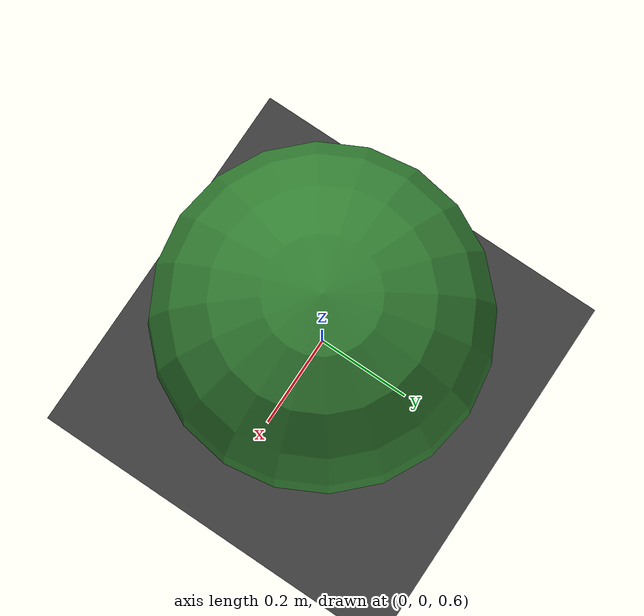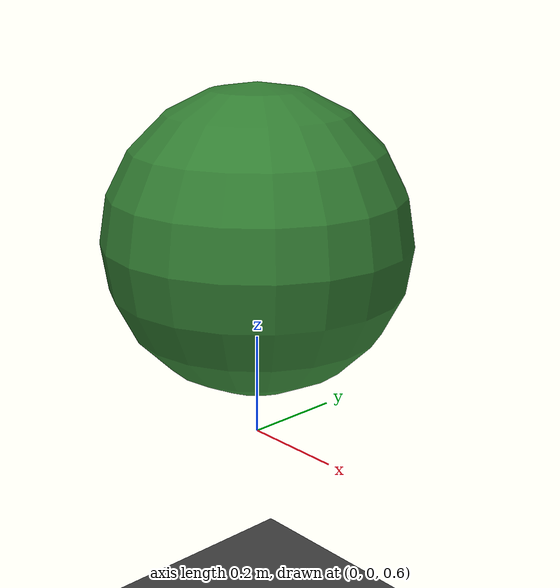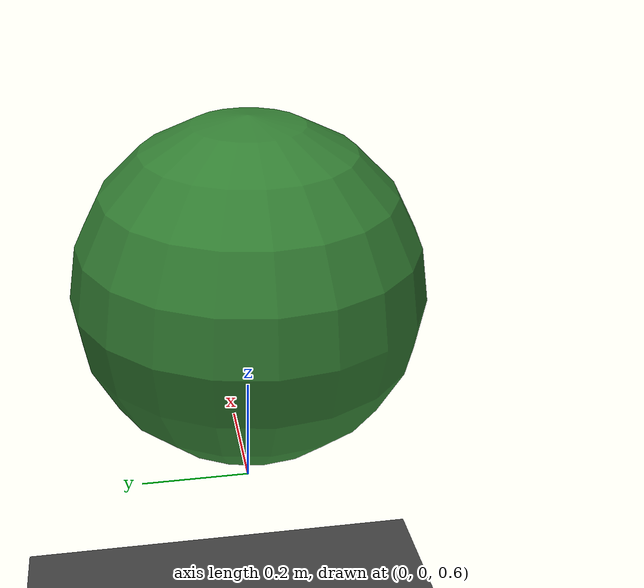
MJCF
don<mujoco>
  <default>
    <geom mass=".01" solref="-1000 0"/>
  </default>
  <visual>
    <rgba haze="0 0 0 1"/>
    <global azimuth="120" elevation="-20"/>
  </visual>
  <asset>
    <texture type="skybox" builtin="gradient" rgb1="0 0 0" rgb2="0 0 0" width="512" height="3072"/>
    <texture type="2d" name="groundplane" builtin="checker" mark="edge" rgb1=".2 .2 .2" rgb2=".3 .3 .3" markrgb=".8 .8 .8" width="300" height="300"/>
    <material name="groundplane" texture="groundplane" texuniform="true" texrepeat="2 2" reflectance=".2"/>
  </asset>
  <worldbody>
    <light pos="0 0 1.5" dir="0 0 -1" directional="true"/>
    <geom name="floor" size="0 0 0.05" type="plane" material="groundplane"/>
    <camera name="camera" pos="0 -2 .5" axisangle="1 0 0 90" fovy="45"/>
    <body pos="0 0 1">
      <freejoint/>
      <geom type="sphere" size="0.3" rgba=".2 .5 .2 1"/>
    </body>
  </worldbody>
</mujoco>
